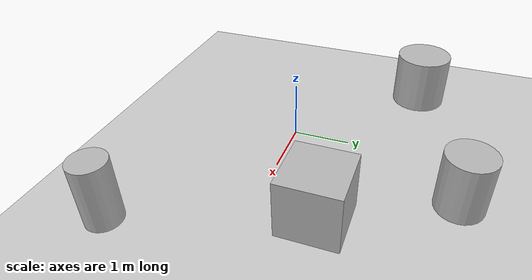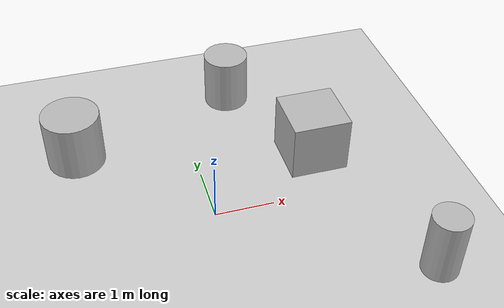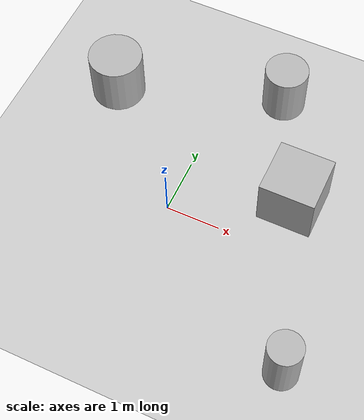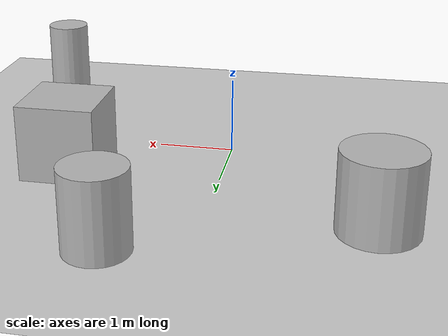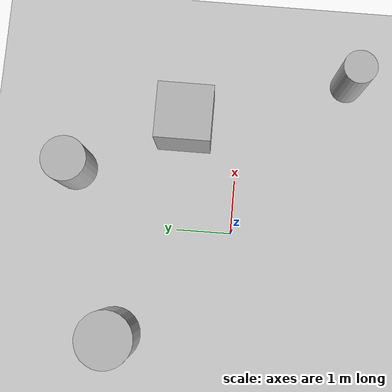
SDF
<?xml version="1.0" ?>
<sdf version="1.6">
  <world name="default">
    <!-- Mặt đất -->
    <include>
      <uri>model://ground_plane</uri>
    </include>

    <!-- Nguồn sáng mặt trời -->
    <include>
      <uri>model://sun</uri>
    </include>

    <!-- Khối hộp chữ nhật cũ (tọa độ x=2, y=1) -->
    <model name="unit_box">
      <pose>2 1 0.5 0 0 0</pose>
      <link name="link">
        <collision name="collision">
          <geometry>
            <box><size>1 1 1</size></box>
          </geometry>
        </collision>
        <visual name="visual">
          <geometry>
            <box><size>1 1 1</size></box>
          </geometry>
        </visual>
      </link>
    </model>

    <!-- Hình trụ 1 (Phía trên bên trái, tọa độ x=1, y=3) -->
    <model name="unit_cylinder_1">
      <pose>1 3 0.5 0 0 0</pose>
      <link name="link">
        <collision name="collision">
          <geometry>
            <cylinder>
              <radius>0.4</radius>
              <length>1.0</length>
            </cylinder>
          </geometry>
        </collision>
        <visual name="visual">
          <geometry>
            <cylinder>
              <radius>0.4</radius>
              <length>1.0</length>
            </cylinder>
          </geometry>
        </visual>
      </link>
    </model>

    <!-- Hình trụ 2 (Phía bên trái robot, tọa độ x=-2, y=2) -->
    <model name="unit_cylinder_2">
      <pose>-2 2 0.5 0 0 0</pose>
      <link name="link">
        <collision name="collision">
          <geometry>
            <cylinder>
              <radius>0.5</radius>
              <length>1.0</length>
            </cylinder>
          </geometry>
        </collision>
        <visual name="visual">
          <geometry>
            <cylinder>
              <radius>0.5</radius>
              <length>1.0</length>
            </cylinder>
          </geometry>
        </visual>
      </link>
    </model>

    <!-- Hình trụ 3 (Phía dưới bên phải, tọa độ x=3, y=-2) -->
    <model name="unit_cylinder_3">
      <pose>3 -2 0.5 0 0 0</pose>
      <link name="link">
        <collision name="collision">
          <geometry>
            <cylinder>
              <radius>0.3</radius>
              <length>1.2</length>
            </cylinder>
          </geometry>
        </collision>
        <visual name="visual">
          <geometry>
            <cylinder>
              <radius>0.3</radius>
              <length>1.2</length>
            </cylinder>
          </geometry>
        </visual>
      </link>
    </model>

  </world>
</sdf>
